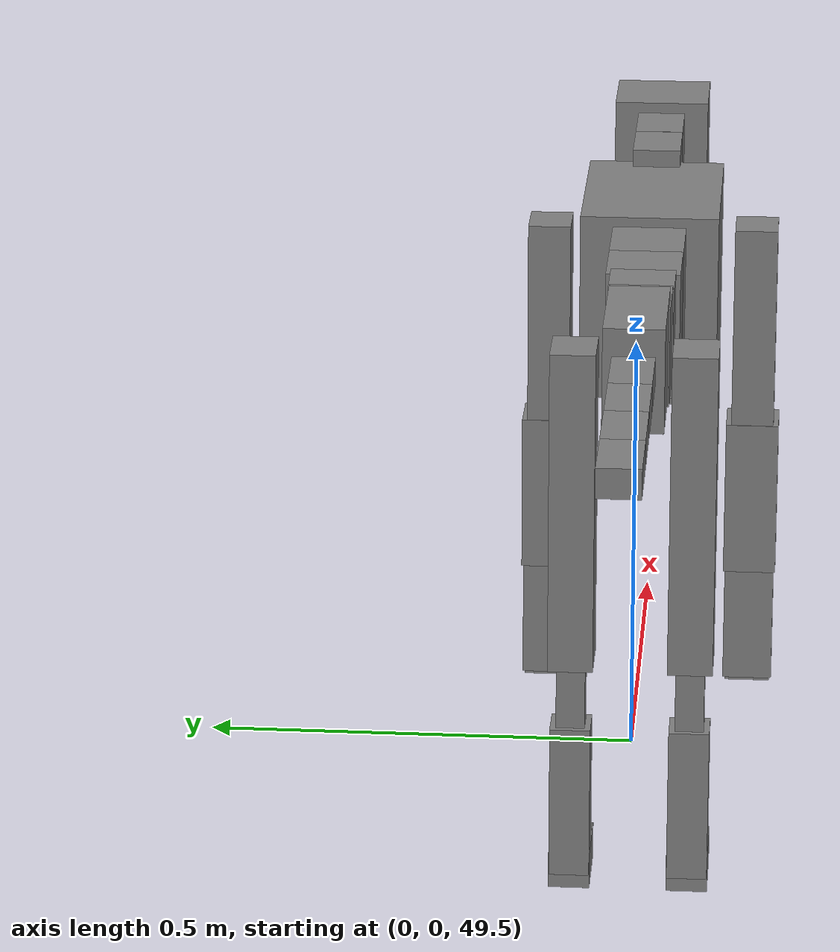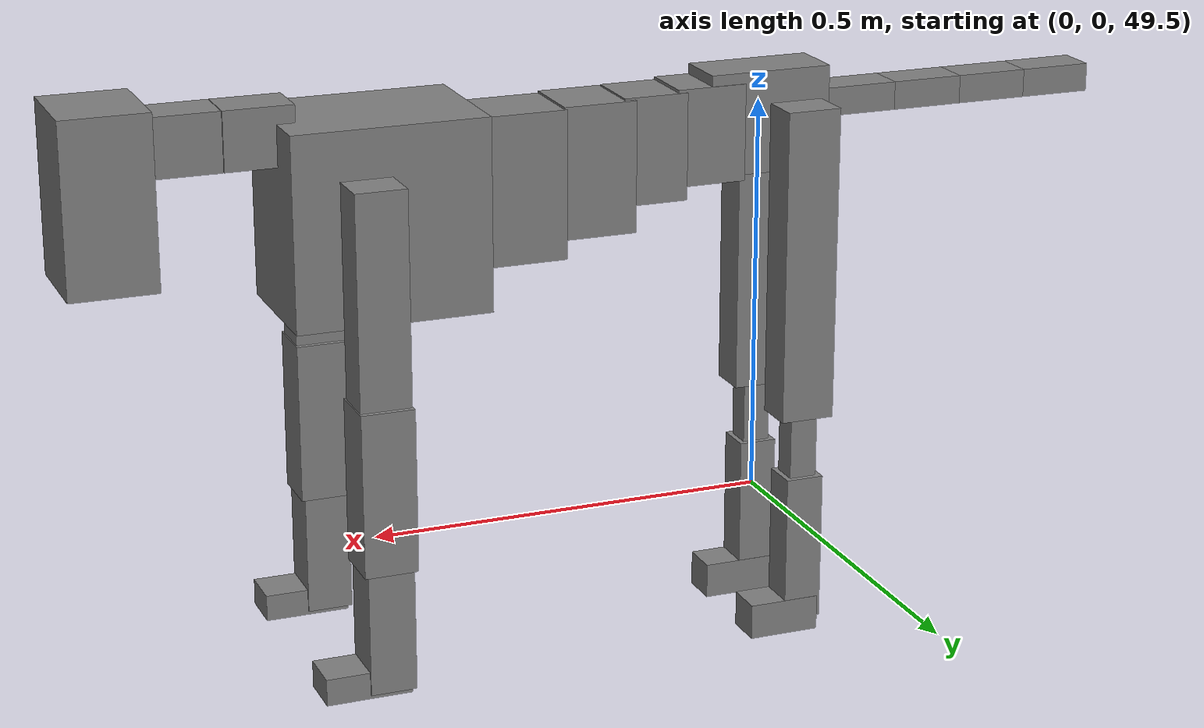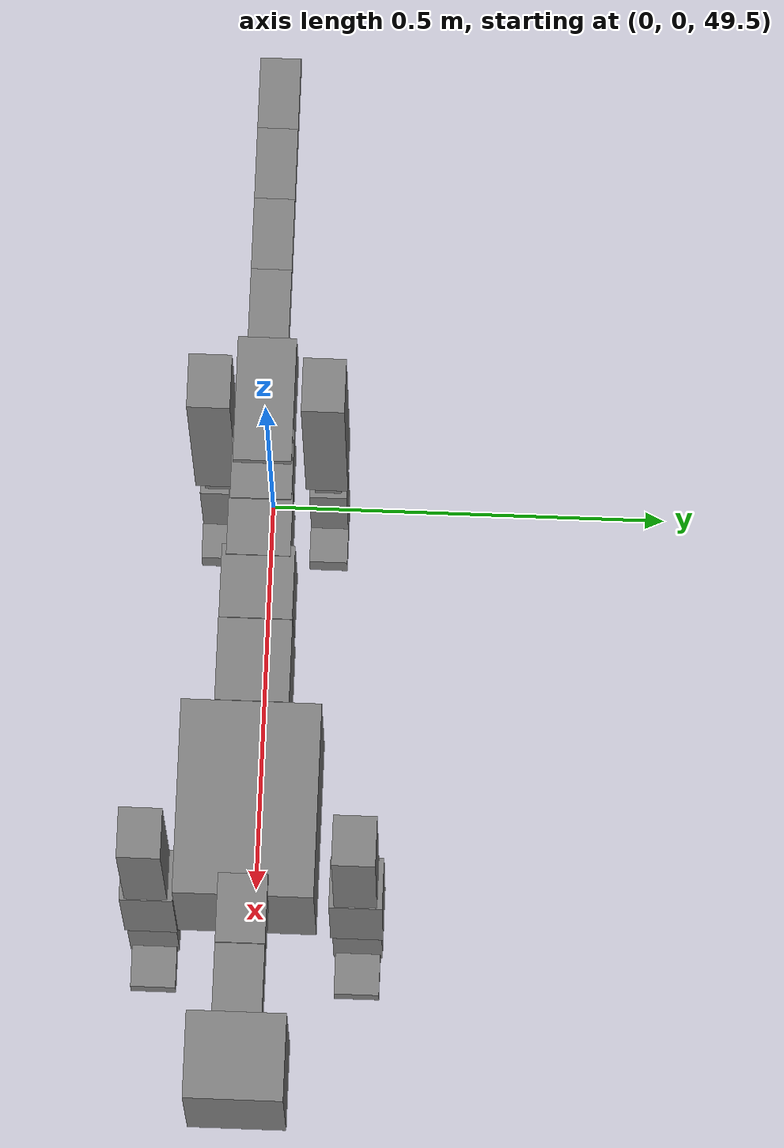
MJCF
<mujoco model="dog">

    <default>
        <joint armature="0.02" stiffness="1" damping="0.2" limited="true"/>
        <geom condim="3" friction="1 0.05 0.05" margin="0.01"/>
        <motor ctrllimited="true" ctrlrange="-1.0 1.0" forcelimited="true" gear="50"/>
    </default>

    <compiler inertiafromgeom="true" angle="radian"/>

    <option timestep="0.016" iterations="50" tolerance="1e-10" solver="Newton" jacobian="dense" cone="pyramidal"/>

    <size nconmax="20000" njmax="60000" nstack="5000000"/>
    <visual>
        <map force="0.1" zfar="30"/>
        <rgba haze="0.15 0.25 0.35 1"/>
        <quality shadowsize="2048"/>
        <global offwidth="800" offheight="800"/>
    </visual>

    <asset>
        <texture type="skybox" builtin="gradient" rgb1="0.3 0.5 0.7" rgb2="0 0 0" width="512" height="512"/>
        <texture name="texplane" type="2d" builtin="checker" rgb1=".2 .3 .4" rgb2=".1 0.15 0.2" width="512" height="512"
                 mark="cross" markrgb=".8 .8 .8"/>
        <texture name="texgeom" type="cube" builtin="flat" mark="cross" width="127" height="1278" rgb1="0.8 0.6 0.4"
                 rgb2="0.8 0.6 0.4" markrgb="1 1 1" random="0.01"/>

        <material name="matplane" reflectance="0.3" texture="texplane" texrepeat="1 1" texuniform="true"/>
        <material name="matgeom" texture="texgeom" texuniform="true" rgba="0.8 0.6 .4 1"/>
    </asset>

    <worldbody>
        <geom name="floor" pos="0 0 0" size="0 0 .25" type="plane" material="matplane" condim="3"/>

        <light directional="false" diffuse=".2 .2 .2" specular="0 0 0" pos="0 0 5" dir="0 0 -1" castshadow="false"/>
        <light mode="targetbodycom" target="torso" directional="false" diffuse=".8 .8 .8" specular="0.3 0.3 0.3"
               pos="0 0 4.0" dir="0 0 -1"/>

        <body name="root" pos="0 0 50">
            <freejoint name="root_1"/>
            <geom type="box" pos="0 0 -0.02" size="0.0774  0.0358  0.063" density="2030"/>

            <body name="spine1" pos="0.054 0 0">
                <joint name="spine1_y" axis="0 1 0" range="0 0.7" limited="true"/>
                <geom type="box" pos="0.02375 0 -0.03" size="0.04375  0.0375  0.05985" density="2030"/>

                <body name="spine2" pos="0.0612 0 0">
                    <joint name="spine2_y" axis="0 1 0" range="-0.15 0.15" limited="true"/>
                    <geom type="box" pos="0.03555  0  -0.04" size="0.04055  0.039  0.06615" density="2030"/>

                    <body name="spine3" pos="0.0730 0 0">
                        <joint name="spine3_y" axis="0 1 0" range="-0.15 0.15" limited="true"/>
                        <geom type="box" pos="0.03555  0  -0.057" size="0.04555  0.0445  0.081" density="2030"/>

                        <body name="spine4" pos="0.0780 0 0">
                            <joint name="spine4_y" axis="0 1 0" range="-0.15 0.15" limited="true"/>
                            <geom type="box" pos="0.05265  0  -0.07" size="0.05265  0.045  0.09135" density="2030"/>

                            <body name="torso" pos="0.1082 0 0">
                                <joint name="torso_y" axis="0 1 0" range="-0.15 0.15" limited="true"/>
                                <geom type="box" pos="0.11925  0  -0.085" size="0.11925  0.085  0.11745"
                                      density="2030"/>

                                <body name="neck1" pos="0.2160  0   0.0180">
                                    <joint name="neck1_y" axis="0 1 0" range="-1.2  -1" limited="true"/>
                                    <geom type="box" pos="0.0423  0  0" size="0.0423  0.03  0.036" density="2325"/>

                                    <body name="neck2" pos="0.0853  0  0">
                                        <joint name="neck2_y" axis="0 1 0" range="0.1  0" limited="true"/>
                                        <geom type="box" pos="0.0423  0  0" size="0.0423  0.03  0.036" density="2325"/>

                                        <body name="head" pos="0.0853  0  0">
                                            <joint name="head_y" axis="0 1 0" range="-0.3  -0.2" limited="true"/>
                                            <geom type="box" pos="0.0531  0  -0.055" size="0.0531  0.06  0.1044"
                                                  density="4030"/>

                                        </body>
                                    </body>
                                </body>

                                <body name="front_shoulder" pos="0.156  0   -0.0480">
                                    <joint name="front_shoulder_y" axis="0 1 0" range="-1 1.5" limited="true"/>
                                    <geom type="box" pos="0 0.13 -0.1159" size="0.0312  0.0267  0.1426" density="1158"/>
                                    <geom type="box" pos="0 -0.13 -0.1159" size="0.0312  0.0267  0.1426"
                                          density="1158"/>

                                    <body name="front_elbow" pos="0  0  -0.2319">
                                        <joint name="front_elbow_y" axis="0 1 0" range="-2 0" limited="true"/>
                                        <geom type="box" pos="0 0.13 -0.1001" size="0.0325  0.0332  0.1001"
                                              density="1081"/>
                                        <geom type="box" pos="0 -0.13 -0.1001" size="0.0325  0.0332  0.1001"
                                              density="1081"/>

                                        <body name="front_wrist" pos="0  0  -0.2002">
                                            <joint name="front_wrist_y" axis="0 1 0" range="-0.2 0" limited="true"/>
                                            <geom type="box" pos="0 0.13 -0.0680" size="0.0281  0.0312  0.0812"
                                                  density="1664"/>
                                            <geom type="box" pos="0 -0.13 -0.0680" size="0.0281  0.0312  0.0812"
                                                  density="1664"/>

                                            <body name="front_finger_end" pos="0  0  -0.1361">
                                                <joint name="front_finger_y" axis="0 1 0" range="-0.4 1"
                                                       limited="true"/>
                                                <geom type="box" pos="0.0287  0.13  -0.0015"
                                                      size="0.0527  0.0287  0.0165" density="1515"/>
                                                <geom type="box" pos="0.0287  -0.13  -0.0015"
                                                      size="0.0527  0.0287  0.0165" density="1515"/>

                                            </body>

                                        </body>
                                    </body>
                                </body>

                            </body>
                        </body>
                    </body>
                </body>
            </body>

            <body name="back_hip" pos="-0.03 0 -0.018">
                <joint name="back_hip_y" axis="0 1 0" range="-1.5 0.3" limited="true"/>
                <geom type="box" pos="0 0.07 -0.1731" size="0.0338  0.0265  0.1959" density="1154"/>
                <geom type="box" pos="0 -0.07 -0.1731" size="0.0338  0.0265  0.1959" density="1154"/>

                <body name="back_knee" pos="0  0  -0.3462">
                    <joint name="back_knee_y" axis="0 1 0" range="0 2.8" limited="true"/>
                    <geom type="box" pos="0 0.07 -0.0562" size="0.0173  0.0170  0.0717" density="1227"/>
                    <geom type="box" pos="0 -0.07 -0.0562" size="0.0173  0.0170  0.0717" density="1227"/>

                    <body name="back_ankle" pos="0  0  -0.1124">
                        <joint name="back_ankle_y" axis="0 1 0" range="-2.2 0" limited="true"/>
                        <geom type="box" pos="0 0.07 -0.0827" size="0.0239  0.0239  0.0939" density="1284"/>
                        <geom type="box" pos="0 -0.07 -0.0827" size="0.0239  0.0239  0.0939" density="1284"/>

                        <body name="back_toe_end" pos="0  0  -0.1653">
                            <joint name="back_toe_y" axis="0 1 0" range="-0.4 1" limited="true"/>
                            <geom type="box" pos="0.0244  0.07  -0.0072" size="0.0448  0.0244  0.0222" density="1515"/>
                            <geom type="box" pos="0.0244  -0.07  -0.0072" size="0.0448  0.0244  0.0222" density="1515"/>

                        </body>
                    </body>
                </body>
            </body>

            <body name="tail1" pos="-0.074 0 -0.006">
                <joint name="tail1_y" axis="0 1 0" range="-0.2 0.2" limited="true"/>
                <geom type="box" pos="-0.0536  0  0" size="0.045  0.025  0.0175" density="1587"/>

                <body name="tail2" pos="-0.09 0 0">
                    <joint name="tail2_y" axis="0 1 0" range="-0.2 0.2" limited="true"/>
                    <geom type="box" pos="-0.0536  0  0" size="0.045  0.025  0.0175" density="1587"/>

                    <body name="tail3" pos="-0.09 0 0">
                        <joint name="tail3_y" axis="0 1 0" range="-0.2 0.2" limited="true"/>
                        <geom type="box" pos="-0.0536  0  0" size="0.045  0.025  0.0175" density="1587"/>

                        <body name="tail4" pos="-0.09 0 0">
                            <joint name="tail4_y" axis="0 1 0" range="-0.2 0.2" limited="true"/>
                            <geom type="box" pos="-0.0536  0  0" size="0.045  0.025  0.0175" density="1587"/>

                        </body>
                    </body>
                </body>
            </body>
        </body>
    </worldbody>

    <actuator>
        <motor joint="spine1_y" forcerange="-150 150     "/>
        <motor joint="spine2_y" forcerange="-150 150     "/>
        <motor joint="spine3_y" forcerange="-150 150     "/>
        <motor joint="spine4_y" forcerange="-150 150     "/>
        <motor joint="torso_y" forcerange="-150 150     "/>
        <motor joint="neck1_y" forcerange="-100 100       "/>
        <motor joint="neck2_y" forcerange="-100 100       "/>
        <motor joint="head_y" forcerange="-150 150       "/>
        <motor joint="front_shoulder_y" forcerange="-107.55 170.30"/>
        <motor joint="front_elbow_y" forcerange="-143.41 198.05"/>
        <motor joint="front_wrist_y" forcerange="-149.92 99.85"/>
        <motor joint="front_finger_y" forcerange="-47.93 65.39"/>
        <motor joint="back_hip_y" forcerange="-324.97 228.70"/>
        <motor joint="back_knee_y" forcerange="-206.25 241.67"/>
        <motor joint="back_angle_y" forcerange="-211.39 71.63"/>
        <motor joint="back_toe_y" forcerange="-63.48 51.81"/>
        <motor joint="tail1_y" forcerange="-50 50     "/>
        <motor joint="tail2_y" forcerange="-50 50     "/>
        <motor joint="tail3_y" forcerange="-50 50     "/>
        <motor joint="tail4_y" forcerange="-50 50     "/>
    </actuator>
</mujoco>
